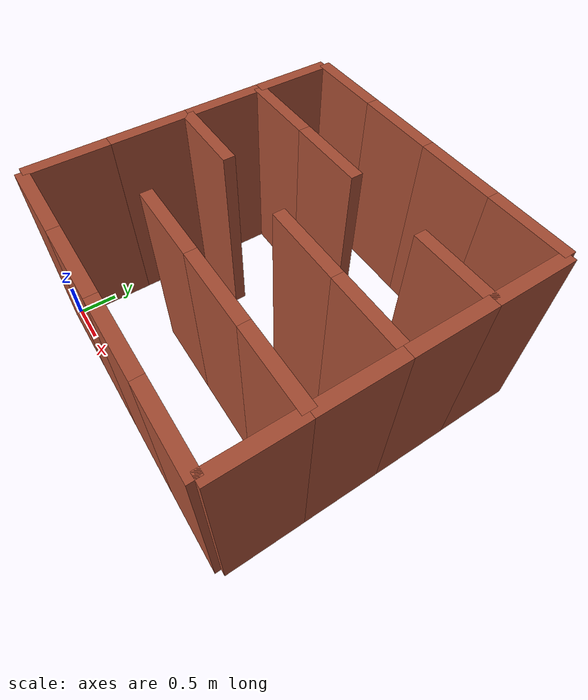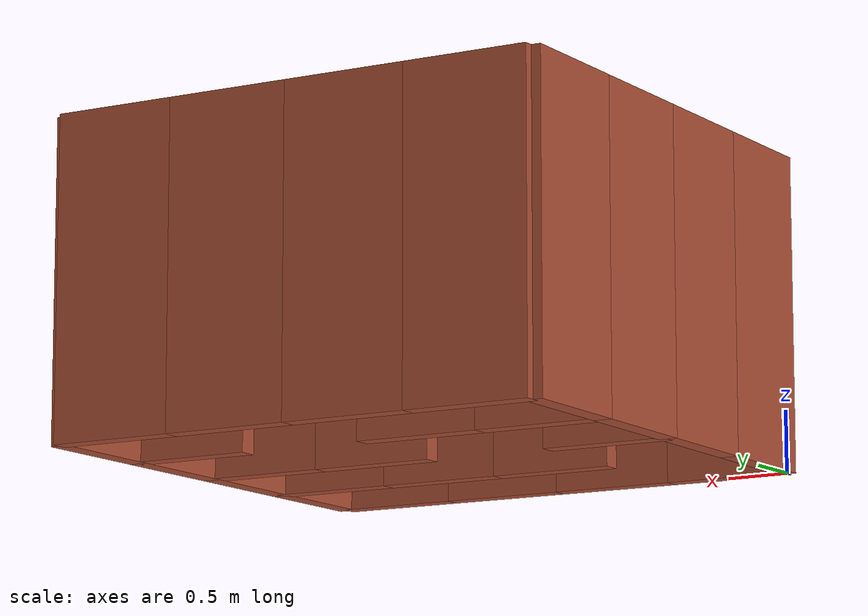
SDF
<sdf version="1.7"><model name="Test_Maze"><pose>0 0 0 0 -0 0</pose><static>1</static><link name="Wall_1"><collision name="Wall_1_Collision"><geometry><box><size>1 0.15 2.5</size></box></geometry><pose>0 0 1.25 0 -0 0</pose></collision><visual name="Wall_1_Visual"><pose>0 0 1.25 0 -0 0</pose><geometry><box><size>1 0.15 2.5</size></box></geometry><material><script><uri>file://media/materials/scripts/gazebo.material</uri><name>Gazebo/Bricks</name></script><ambient>1 1 1 1</ambient></material><meta><layer>0</layer></meta></visual><pose>0 0.5 0 0 0 1.57</pose></link><link name="Wall_2"><collision name="Wall_2_Collision"><geometry><box><size>1 0.15 2.5</size></box></geometry><pose>0 0 1.25 0 -0 0</pose></collision><visual name="Wall_2_Visual"><pose>0 0 1.25 0 -0 0</pose><geometry><box><size>1 0.15 2.5</size></box></geometry><material><script><uri>file://media/materials/scripts/gazebo.material</uri><name>Gazebo/Bricks</name></script><ambient>1 1 1 1</ambient></material><meta><layer>0</layer></meta></visual><pose>0.5 0 0 0 0 0</pose></link><link name="Wall_4"><collision name="Wall_4_Collision"><geometry><box><size>1 0.15 2.5</size></box></geometry><pose>0 0 1.25 0 -0 0</pose></collision><visual name="Wall_4_Visual"><pose>0 0 1.25 0 -0 0</pose><geometry><box><size>1 0.15 2.5</size></box></geometry><material><script><uri>file://media/materials/scripts/gazebo.material</uri><name>Gazebo/Bricks</name></script><ambient>1 1 1 1</ambient></material><meta><layer>0</layer></meta></visual><pose>1.5 0 0 0 0 0</pose></link><link name="Wall_5"><collision name="Wall_5_Collision"><geometry><box><size>1 0.15 2.5</size></box></geometry><pose>0 0 1.25 0 -0 0</pose></collision><visual name="Wall_5_Visual"><pose>0 0 1.25 0 -0 0</pose><geometry><box><size>1 0.15 2.5</size></box></geometry><material><script><uri>file://media/materials/scripts/gazebo.material</uri><name>Gazebo/Bricks</name></script><ambient>1 1 1 1</ambient></material><meta><layer>0</layer></meta></visual><pose>1.5 1 0 0 0 0</pose></link><link name="Wall_7"><collision name="Wall_7_Collision"><geometry><box><size>1 0.15 2.5</size></box></geometry><pose>0 0 1.25 0 -0 0</pose></collision><visual name="Wall_7_Visual"><pose>0 0 1.25 0 -0 0</pose><geometry><box><size>1 0.15 2.5</size></box></geometry><material><script><uri>file://media/materials/scripts/gazebo.material</uri><name>Gazebo/Bricks</name></script><ambient>1 1 1 1</ambient></material><meta><layer>0</layer></meta></visual><pose>2.5 0 0 0 0 0</pose></link><link name="Wall_8"><collision name="Wall_8_Collision"><geometry><box><size>1 0.15 2.5</size></box></geometry><pose>0 0 1.25 0 -0 0</pose></collision><visual name="Wall_8_Visual"><pose>0 0 1.25 0 -0 0</pose><geometry><box><size>1 0.15 2.5</size></box></geometry><material><script><uri>file://media/materials/scripts/gazebo.material</uri><name>Gazebo/Bricks</name></script><ambient>1 1 1 1</ambient></material><meta><layer>0</layer></meta></visual><pose>2.5 1 0 0 0 0</pose></link><link name="Wall_10"><collision name="Wall_10_Collision"><geometry><box><size>1 0.15 2.5</size></box></geometry><pose>0 0 1.25 0 -0 0</pose></collision><visual name="Wall_10_Visual"><pose>0 0 1.25 0 -0 0</pose><geometry><box><size>1 0.15 2.5</size></box></geometry><material><script><uri>file://media/materials/scripts/gazebo.material</uri><name>Gazebo/Bricks</name></script><ambient>1 1 1 1</ambient></material><meta><layer>0</layer></meta></visual><pose>4 0.5 0 0 0 1.57</pose></link><link name="Wall_11"><collision name="Wall_11_Collision"><geometry><box><size>1 0.15 2.5</size></box></geometry><pose>0 0 1.25 0 -0 0</pose></collision><visual name="Wall_11_Visual"><pose>0 0 1.25 0 -0 0</pose><geometry><box><size>1 0.15 2.5</size></box></geometry><material><script><uri>file://media/materials/scripts/gazebo.material</uri><name>Gazebo/Bricks</name></script><ambient>1 1 1 1</ambient></material><meta><layer>0</layer></meta></visual><pose>3.5 0 0 0 0 0</pose></link><link name="Wall_12"><collision name="Wall_12_Collision"><geometry><box><size>1 0.15 2.5</size></box></geometry><pose>0 0 1.25 0 -0 0</pose></collision><visual name="Wall_12_Visual"><pose>0 0 1.25 0 -0 0</pose><geometry><box><size>1 0.15 2.5</size></box></geometry><material><script><uri>file://media/materials/scripts/gazebo.material</uri><name>Gazebo/Bricks</name></script><ambient>1 1 1 1</ambient></material><meta><layer>0</layer></meta></visual><pose>3.5 1 0 0 0 0</pose></link><link name="Wall_13"><collision name="Wall_13_Collision"><geometry><box><size>1 0.15 2.5</size></box></geometry><pose>0 0 1.25 0 -0 0</pose></collision><visual name="Wall_13_Visual"><pose>0 0 1.25 0 -0 0</pose><geometry><box><size>1 0.15 2.5</size></box></geometry><material><script><uri>file://media/materials/scripts/gazebo.material</uri><name>Gazebo/Bricks</name></script><ambient>1 1 1 1</ambient></material><meta><layer>0</layer></meta></visual><pose>0 1.5 0 0 0 1.57</pose></link><link name="Wall_14"><collision name="Wall_14_Collision"><geometry><box><size>1 0.15 2.5</size></box></geometry><pose>0 0 1.25 0 -0 0</pose></collision><visual name="Wall_14_Visual"><pose>0 0 1.25 0 -0 0</pose><geometry><box><size>1 0.15 2.5</size></box></geometry><material><script><uri>file://media/materials/scripts/gazebo.material</uri><name>Gazebo/Bricks</name></script><ambient>1 1 1 1</ambient></material><meta><layer>0</layer></meta></visual><pose>0.5 2 0 0 0 0</pose></link><link name="Wall_16"><collision name="Wall_16_Collision"><geometry><box><size>1 0.15 2.5</size></box></geometry><pose>0 0 1.25 0 -0 0</pose></collision><visual name="Wall_16_Visual"><pose>0 0 1.25 0 -0 0</pose><geometry><box><size>1 0.15 2.5</size></box></geometry><material><script><uri>file://media/materials/scripts/gazebo.material</uri><name>Gazebo/Bricks</name></script><ambient>1 1 1 1</ambient></material><meta><layer>0</layer></meta></visual><pose>1.5 1 0 0 0 0</pose></link><link name="Wall_18"><collision name="Wall_18_Collision"><geometry><box><size>1 0.15 2.5</size></box></geometry><pose>0 0 1.25 0 -0 0</pose></collision><visual name="Wall_18_Visual"><pose>0 0 1.25 0 -0 0</pose><geometry><box><size>1 0.15 2.5</size></box></geometry><material><script><uri>file://media/materials/scripts/gazebo.material</uri><name>Gazebo/Bricks</name></script><ambient>1 1 1 1</ambient></material><meta><layer>0</layer></meta></visual><pose>2.5 1 0 0 0 0</pose></link><link name="Wall_19"><collision name="Wall_19_Collision"><geometry><box><size>1 0.15 2.5</size></box></geometry><pose>0 0 1.25 0 -0 0</pose></collision><visual name="Wall_19_Visual"><pose>0 0 1.25 0 -0 0</pose><geometry><box><size>1 0.15 2.5</size></box></geometry><material><script><uri>file://media/materials/scripts/gazebo.material</uri><name>Gazebo/Bricks</name></script><ambient>1 1 1 1</ambient></material><meta><layer>0</layer></meta></visual><pose>2.5 2 0 0 0 0</pose></link><link name="Wall_21"><collision name="Wall_21_Collision"><geometry><box><size>1 0.15 2.5</size></box></geometry><pose>0 0 1.25 0 -0 0</pose></collision><visual name="Wall_21_Visual"><pose>0 0 1.25 0 -0 0</pose><geometry><box><size>1 0.15 2.5</size></box></geometry><material><script><uri>file://media/materials/scripts/gazebo.material</uri><name>Gazebo/Bricks</name></script><ambient>1 1 1 1</ambient></material><meta><layer>0</layer></meta></visual><pose>4 1.5 0 0 0 1.57</pose></link><link name="Wall_22"><collision name="Wall_22_Collision"><geometry><box><size>1 0.15 2.5</size></box></geometry><pose>0 0 1.25 0 -0 0</pose></collision><visual name="Wall_22_Visual"><pose>0 0 1.25 0 -0 0</pose><geometry><box><size>1 0.15 2.5</size></box></geometry><material><script><uri>file://media/materials/scripts/gazebo.material</uri><name>Gazebo/Bricks</name></script><ambient>1 1 1 1</ambient></material><meta><layer>0</layer></meta></visual><pose>3.5 1 0 0 0 0</pose></link><link name="Wall_23"><collision name="Wall_23_Collision"><geometry><box><size>1 0.15 2.5</size></box></geometry><pose>0 0 1.25 0 -0 0</pose></collision><visual name="Wall_23_Visual"><pose>0 0 1.25 0 -0 0</pose><geometry><box><size>1 0.15 2.5</size></box></geometry><material><script><uri>file://media/materials/scripts/gazebo.material</uri><name>Gazebo/Bricks</name></script><ambient>1 1 1 1</ambient></material><meta><layer>0</layer></meta></visual><pose>3.5 2 0 0 0 0</pose></link><link name="Wall_24"><collision name="Wall_24_Collision"><geometry><box><size>1 0.15 2.5</size></box></geometry><pose>0 0 1.25 0 -0 0</pose></collision><visual name="Wall_24_Visual"><pose>0 0 1.25 0 -0 0</pose><geometry><box><size>1 0.15 2.5</size></box></geometry><material><script><uri>file://media/materials/scripts/gazebo.material</uri><name>Gazebo/Bricks</name></script><ambient>1 1 1 1</ambient></material><meta><layer>0</layer></meta></visual><pose>0 2.5 0 0 0 1.57</pose></link><link name="Wall_25"><collision name="Wall_25_Collision"><geometry><box><size>1 0.15 2.5</size></box></geometry><pose>0 0 1.25 0 -0 0</pose></collision><visual name="Wall_25_Visual"><pose>0 0 1.25 0 -0 0</pose><geometry><box><size>1 0.15 2.5</size></box></geometry><material><script><uri>file://media/materials/scripts/gazebo.material</uri><name>Gazebo/Bricks</name></script><ambient>1 1 1 1</ambient></material><meta><layer>0</layer></meta></visual><pose>0.5 2 0 0 0 0</pose></link><link name="Wall_26"><collision name="Wall_26_Collision"><geometry><box><size>1 0.15 2.5</size></box></geometry><pose>0 0 1.25 0 -0 0</pose></collision><visual name="Wall_26_Visual"><pose>0 0 1.25 0 -0 0</pose><geometry><box><size>1 0.15 2.5</size></box></geometry><material><script><uri>file://media/materials/scripts/gazebo.material</uri><name>Gazebo/Bricks</name></script><ambient>1 1 1 1</ambient></material><meta><layer>0</layer></meta></visual><pose>0.5 3 0 0 0 0</pose></link><link name="Wall_28"><collision name="Wall_28_Collision"><geometry><box><size>1 0.15 2.5</size></box></geometry><pose>0 0 1.25 0 -0 0</pose></collision><visual name="Wall_28_Visual"><pose>0 0 1.25 0 -0 0</pose><geometry><box><size>1 0.15 2.5</size></box></geometry><material><script><uri>file://media/materials/scripts/gazebo.material</uri><name>Gazebo/Bricks</name></script><ambient>1 1 1 1</ambient></material><meta><layer>0</layer></meta></visual><pose>1.5 3 0 0 0 0</pose></link><link name="Wall_30"><collision name="Wall_30_Collision"><geometry><box><size>1 0.15 2.5</size></box></geometry><pose>0 0 1.25 0 -0 0</pose></collision><visual name="Wall_30_Visual"><pose>0 0 1.25 0 -0 0</pose><geometry><box><size>1 0.15 2.5</size></box></geometry><material><script><uri>file://media/materials/scripts/gazebo.material</uri><name>Gazebo/Bricks</name></script><ambient>1 1 1 1</ambient></material><meta><layer>0</layer></meta></visual><pose>2.5 2 0 0 0 0</pose></link><link name="Wall_32"><collision name="Wall_32_Collision"><geometry><box><size>1 0.15 2.5</size></box></geometry><pose>0 0 1.25 0 -0 0</pose></collision><visual name="Wall_32_Visual"><pose>0 0 1.25 0 -0 0</pose><geometry><box><size>1 0.15 2.5</size></box></geometry><material><script><uri>file://media/materials/scripts/gazebo.material</uri><name>Gazebo/Bricks</name></script><ambient>1 1 1 1</ambient></material><meta><layer>0</layer></meta></visual><pose>4 2.5 0 0 0 1.57</pose></link><link name="Wall_33"><collision name="Wall_33_Collision"><geometry><box><size>1 0.15 2.5</size></box></geometry><pose>0 0 1.25 0 -0 0</pose></collision><visual name="Wall_33_Visual"><pose>0 0 1.25 0 -0 0</pose><geometry><box><size>1 0.15 2.5</size></box></geometry><material><script><uri>file://media/materials/scripts/gazebo.material</uri><name>Gazebo/Bricks</name></script><ambient>1 1 1 1</ambient></material><meta><layer>0</layer></meta></visual><pose>3.5 2 0 0 0 0</pose></link><link name="Wall_34"><collision name="Wall_34_Collision"><geometry><box><size>1 0.15 2.5</size></box></geometry><pose>0 0 1.25 0 -0 0</pose></collision><visual name="Wall_34_Visual"><pose>0 0 1.25 0 -0 0</pose><geometry><box><size>1 0.15 2.5</size></box></geometry><material><script><uri>file://media/materials/scripts/gazebo.material</uri><name>Gazebo/Bricks</name></script><ambient>1 1 1 1</ambient></material><meta><layer>0</layer></meta></visual><pose>3.5 3 0 0 0 0</pose></link><link name="Wall_35"><collision name="Wall_35_Collision"><geometry><box><size>1 0.15 2.5</size></box></geometry><pose>0 0 1.25 0 -0 0</pose></collision><visual name="Wall_35_Visual"><pose>0 0 1.25 0 -0 0</pose><geometry><box><size>1 0.15 2.5</size></box></geometry><material><script><uri>file://media/materials/scripts/gazebo.material</uri><name>Gazebo/Bricks</name></script><ambient>1 1 1 1</ambient></material><meta><layer>0</layer></meta></visual><pose>0 3.5 0 0 0 1.57</pose></link><link name="Wall_36"><collision name="Wall_36_Collision"><geometry><box><size>1 0.15 2.5</size></box></geometry><pose>0 0 1.25 0 -0 0</pose></collision><visual name="Wall_36_Visual"><pose>0 0 1.25 0 -0 0</pose><geometry><box><size>1 0.15 2.5</size></box></geometry><material><script><uri>file://media/materials/scripts/gazebo.material</uri><name>Gazebo/Bricks</name></script><ambient>1 1 1 1</ambient></material><meta><layer>0</layer></meta></visual><pose>0.5 3 0 0 0 0</pose></link><link name="Wall_37"><collision name="Wall_37_Collision"><geometry><box><size>1 0.15 2.5</size></box></geometry><pose>0 0 1.25 0 -0 0</pose></collision><visual name="Wall_37_Visual"><pose>0 0 1.25 0 -0 0</pose><geometry><box><size>1 0.15 2.5</size></box></geometry><material><script><uri>file://media/materials/scripts/gazebo.material</uri><name>Gazebo/Bricks</name></script><ambient>1 1 1 1</ambient></material><meta><layer>0</layer></meta></visual><pose>0.5 4 0 0 0 0</pose></link><link name="Wall_39"><collision name="Wall_39_Collision"><geometry><box><size>1 0.15 2.5</size></box></geometry><pose>0 0 1.25 0 -0 0</pose></collision><visual name="Wall_39_Visual"><pose>0 0 1.25 0 -0 0</pose><geometry><box><size>1 0.15 2.5</size></box></geometry><material><script><uri>file://media/materials/scripts/gazebo.material</uri><name>Gazebo/Bricks</name></script><ambient>1 1 1 1</ambient></material><meta><layer>0</layer></meta></visual><pose>1.5 3 0 0 0 0</pose></link><link name="Wall_40"><collision name="Wall_40_Collision"><geometry><box><size>1 0.15 2.5</size></box></geometry><pose>0 0 1.25 0 -0 0</pose></collision><visual name="Wall_40_Visual"><pose>0 0 1.25 0 -0 0</pose><geometry><box><size>1 0.15 2.5</size></box></geometry><material><script><uri>file://media/materials/scripts/gazebo.material</uri><name>Gazebo/Bricks</name></script><ambient>1 1 1 1</ambient></material><meta><layer>0</layer></meta></visual><pose>1.5 4 0 0 0 0</pose></link><link name="Wall_42"><collision name="Wall_42_Collision"><geometry><box><size>1 0.15 2.5</size></box></geometry><pose>0 0 1.25 0 -0 0</pose></collision><visual name="Wall_42_Visual"><pose>0 0 1.25 0 -0 0</pose><geometry><box><size>1 0.15 2.5</size></box></geometry><material><script><uri>file://media/materials/scripts/gazebo.material</uri><name>Gazebo/Bricks</name></script><ambient>1 1 1 1</ambient></material><meta><layer>0</layer></meta></visual><pose>2.5 4 0 0 0 0</pose></link><link name="Wall_44"><collision name="Wall_44_Collision"><geometry><box><size>1 0.15 2.5</size></box></geometry><pose>0 0 1.25 0 -0 0</pose></collision><visual name="Wall_44_Visual"><pose>0 0 1.25 0 -0 0</pose><geometry><box><size>1 0.15 2.5</size></box></geometry><material><script><uri>file://media/materials/scripts/gazebo.material</uri><name>Gazebo/Bricks</name></script><ambient>1 1 1 1</ambient></material><meta><layer>0</layer></meta></visual><pose>4 3.5 0 0 0 1.57</pose></link><link name="Wall_45"><collision name="Wall_45_Collision"><geometry><box><size>1 0.15 2.5</size></box></geometry><pose>0 0 1.25 0 -0 0</pose></collision><visual name="Wall_45_Visual"><pose>0 0 1.25 0 -0 0</pose><geometry><box><size>1 0.15 2.5</size></box></geometry><material><script><uri>file://media/materials/scripts/gazebo.material</uri><name>Gazebo/Bricks</name></script><ambient>1 1 1 1</ambient></material><meta><layer>0</layer></meta></visual><pose>3.5 3 0 0 0 0</pose></link><link name="Wall_46"><collision name="Wall_46_Collision"><geometry><box><size>1 0.15 2.5</size></box></geometry><pose>0 0 1.25 0 -0 0</pose></collision><visual name="Wall_46_Visual"><pose>0 0 1.25 0 -0 0</pose><geometry><box><size>1 0.15 2.5</size></box></geometry><material><script><uri>file://media/materials/scripts/gazebo.material</uri><name>Gazebo/Bricks</name></script><ambient>1 1 1 1</ambient></material><meta><layer>0</layer></meta></visual><pose>3.5 4 0 0 0 0</pose></link></model></sdf>
